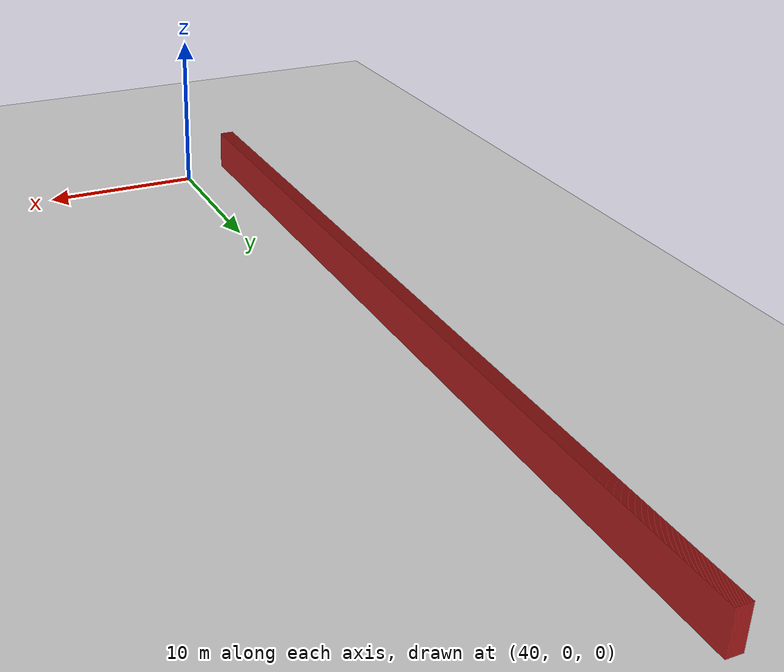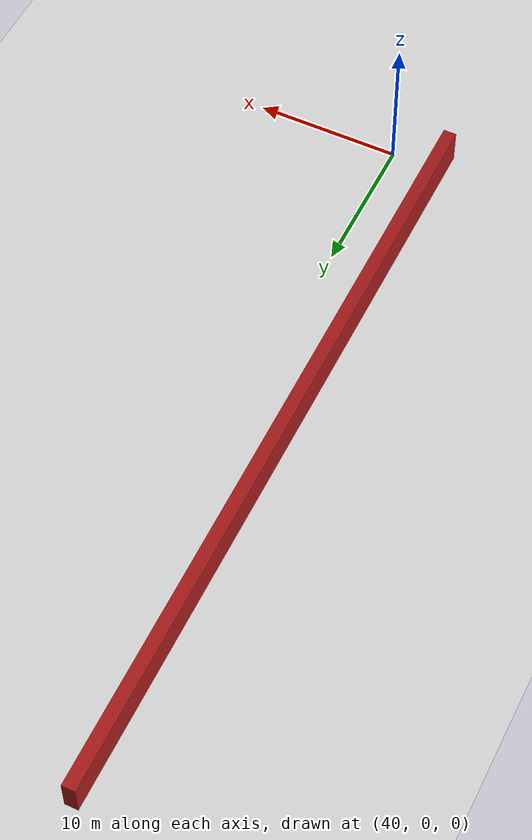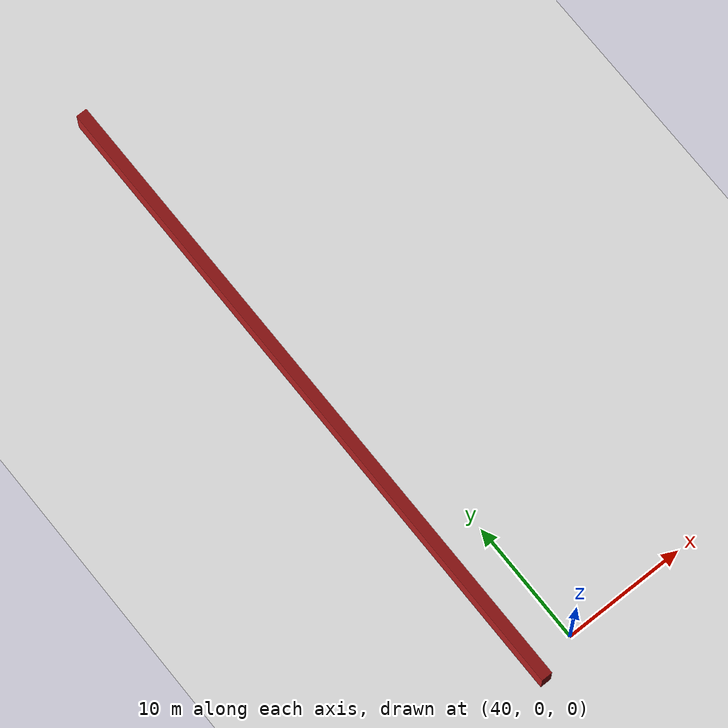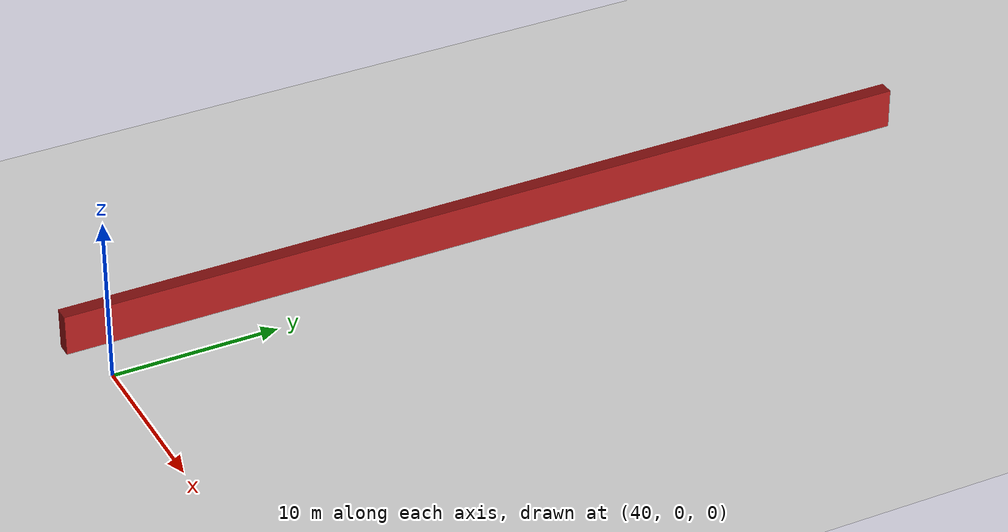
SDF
<sdf version="1.4">
 <world name="1_wall">
  <model name="ground_plane">
   <static>1</static>
   <link name="link">
    <collision name="collision">
     <geometry><plane><normal>0 0 1</normal><size>1000 1000</size></plane></geometry>
     <surface><friction><ode><mu>100</mu><mu2>50</mu2></ode></friction></surface>
    </collision>
    <visual name="visual">
     <cast_shadows>0</cast_shadows>
     <geometry><plane><normal>0 0 1</normal><size>10000 10000</size></plane></geometry>
     <material>
      <script><uri>file://media/materials/scripts/gazebo.material</uri><name>Gazebo/Grey</name></script>
     </material>
    </visual>
    <velocity_decay><linear>0</linear><angular>0</angular></velocity_decay>
   </link>
  </model>
  <model name="Wall_752">
   <static>1</static>
   <link name="Wall_752">
    <collision name="Wall_Collision_752">
     <geometry><box><size>53.65 0.05 2.5</size></box></geometry>
     <pose>0 0 1.25 0 -0 0</pose>
    </collision>
    <visual name="Wall_Visual_752">
     <pose>0 0 1.25 0 -0 0</pose>
     <geometry><box><size>53.65 0.05 2.5</size></box></geometry>
     <material>
      <script><uri>file://media/materials/scripts/gazebo.material</uri><name>Gazebo/Red</name></script>
     </material>
    </visual>
    <velocity_decay><linear>0</linear><angular>0</angular></velocity_decay>
    <pose>36.1 25.3 0 0 0 1.5707963267948966</pose>
   </link>
  </model>
  <model name="Wall_753">
   <static>1</static>
   <link name="Wall_753">
    <collision name="Wall_Collision_753">
     <geometry><box><size>53.65 0.05 2.5</size></box></geometry>
     <pose>0 0 1.25 0 -0 0</pose>
    </collision>
    <visual name="Wall_Visual_753">
     <pose>0 0 1.25 0 -0 0</pose>
     <geometry><box><size>53.65 0.05 2.5</size></box></geometry>
     <material>
      <script><uri>file://media/materials/scripts/gazebo.material</uri><name>Gazebo/Red</name></script>
     </material>
    </visual>
    <velocity_decay><linear>0</linear><angular>0</angular></velocity_decay>
    <pose>36.15 25.3 0 0 0 1.5707963267948966</pose>
   </link>
  </model>
  <model name="Wall_754">
   <static>1</static>
   <link name="Wall_754">
    <collision name="Wall_Collision_754">
     <geometry><box><size>53.65 0.05 2.5</size></box></geometry>
     <pose>0 0 1.25 0 -0 0</pose>
    </collision>
    <visual name="Wall_Visual_754">
     <pose>0 0 1.25 0 -0 0</pose>
     <geometry><box><size>53.65 0.05 2.5</size></box></geometry>
     <material>
      <script><uri>file://media/materials/scripts/gazebo.material</uri><name>Gazebo/Red</name></script>
     </material>
    </visual>
    <velocity_decay><linear>0</linear><angular>0</angular></velocity_decay>
    <pose>36.2 25.3 0 0 0 1.5707963267948966</pose>
   </link>
  </model>
  <model name="Wall_755">
   <static>1</static>
   <link name="Wall_755">
    <collision name="Wall_Collision_755">
     <geometry><box><size>53.65 0.05 2.5</size></box></geometry>
     <pose>0 0 1.25 0 -0 0</pose>
    </collision>
    <visual name="Wall_Visual_755">
     <pose>0 0 1.25 0 -0 0</pose>
     <geometry><box><size>53.65 0.05 2.5</size></box></geometry>
     <material>
      <script><uri>file://media/materials/scripts/gazebo.material</uri><name>Gazebo/Red</name></script>
     </material>
    </visual>
    <velocity_decay><linear>0</linear><angular>0</angular></velocity_decay>
    <pose>36.25 25.3 0 0 0 1.5707963267948966</pose>
   </link>
  </model>
  <model name="Wall_756">
   <static>1</static>
   <link name="Wall_756">
    <collision name="Wall_Collision_756">
     <geometry><box><size>53.65 0.05 2.5</size></box></geometry>
     <pose>0 0 1.25 0 -0 0</pose>
    </collision>
    <visual name="Wall_Visual_756">
     <pose>0 0 1.25 0 -0 0</pose>
     <geometry><box><size>53.65 0.05 2.5</size></box></geometry>
     <material>
      <script><uri>file://media/materials/scripts/gazebo.material</uri><name>Gazebo/Red</name></script>
     </material>
    </visual>
    <velocity_decay><linear>0</linear><angular>0</angular></velocity_decay>
    <pose>36.3 25.3 0 0 0 1.5707963267948966</pose>
   </link>
  </model>
  <model name="Wall_757">
   <static>1</static>
   <link name="Wall_757">
    <collision name="Wall_Collision_757">
     <geometry><box><size>53.65 0.05 2.5</size></box></geometry>
     <pose>0 0 1.25 0 -0 0</pose>
    </collision>
    <visual name="Wall_Visual_757">
     <pose>0 0 1.25 0 -0 0</pose>
     <geometry><box><size>53.65 0.05 2.5</size></box></geometry>
     <material>
      <script><uri>file://media/materials/scripts/gazebo.material</uri><name>Gazebo/Red</name></script>
     </material>
    </visual>
    <velocity_decay><linear>0</linear><angular>0</angular></velocity_decay>
    <pose>36.35 25.3 0 0 0 1.5707963267948966</pose>
   </link>
  </model>
  <model name="Wall_758">
   <static>1</static>
   <link name="Wall_758">
    <collision name="Wall_Collision_758">
     <geometry><box><size>53.65 0.05 2.5</size></box></geometry>
     <pose>0 0 1.25 0 -0 0</pose>
    </collision>
    <visual name="Wall_Visual_758">
     <pose>0 0 1.25 0 -0 0</pose>
     <geometry><box><size>53.65 0.05 2.5</size></box></geometry>
     <material>
      <script><uri>file://media/materials/scripts/gazebo.material</uri><name>Gazebo/Red</name></script>
     </material>
    </visual>
    <velocity_decay><linear>0</linear><angular>0</angular></velocity_decay>
    <pose>36.4 25.3 0 0 0 1.5707963267948966</pose>
   </link>
  </model>
  <model name="Wall_759">
   <static>1</static>
   <link name="Wall_759">
    <collision name="Wall_Collision_759">
     <geometry><box><size>53.65 0.05 2.5</size></box></geometry>
     <pose>0 0 1.25 0 -0 0</pose>
    </collision>
    <visual name="Wall_Visual_759">
     <pose>0 0 1.25 0 -0 0</pose>
     <geometry><box><size>53.65 0.05 2.5</size></box></geometry>
     <material>
      <script><uri>file://media/materials/scripts/gazebo.material</uri><name>Gazebo/Red</name></script>
     </material>
    </visual>
    <velocity_decay><linear>0</linear><angular>0</angular></velocity_decay>
    <pose>36.45 25.3 0 0 0 1.5707963267948966</pose>
   </link>
  </model>
  <model name="Wall_760">
   <static>1</static>
   <link name="Wall_760">
    <collision name="Wall_Collision_760">
     <geometry><box><size>53.65 0.05 2.5</size></box></geometry>
     <pose>0 0 1.25 0 -0 0</pose>
    </collision>
    <visual name="Wall_Visual_760">
     <pose>0 0 1.25 0 -0 0</pose>
     <geometry><box><size>53.65 0.05 2.5</size></box></geometry>
     <material>
      <script><uri>file://media/materials/scripts/gazebo.material</uri><name>Gazebo/Red</name></script>
     </material>
    </visual>
    <velocity_decay><linear>0</linear><angular>0</angular></velocity_decay>
    <pose>36.5 25.3 0 0 0 1.5707963267948966</pose>
   </link>
  </model>
  <model name="Wall_761">
   <static>1</static>
   <link name="Wall_761">
    <collision name="Wall_Collision_761">
     <geometry><box><size>53.65 0.05 2.5</size></box></geometry>
     <pose>0 0 1.25 0 -0 0</pose>
    </collision>
    <visual name="Wall_Visual_761">
     <pose>0 0 1.25 0 -0 0</pose>
     <geometry><box><size>53.65 0.05 2.5</size></box></geometry>
     <material>
      <script><uri>file://media/materials/scripts/gazebo.material</uri><name>Gazebo/Red</name></script>
     </material>
    </visual>
    <velocity_decay><linear>0</linear><angular>0</angular></velocity_decay>
    <pose>36.55 25.3 0 0 0 1.5707963267948966</pose>
   </link>
  </model>
  <model name="Wall_762">
   <static>1</static>
   <link name="Wall_762">
    <collision name="Wall_Collision_762">
     <geometry><box><size>53.65 0.05 2.5</size></box></geometry>
     <pose>0 0 1.25 0 -0 0</pose>
    </collision>
    <visual name="Wall_Visual_762">
     <pose>0 0 1.25 0 -0 0</pose>
     <geometry><box><size>53.65 0.05 2.5</size></box></geometry>
     <material>
      <script><uri>file://media/materials/scripts/gazebo.material</uri><name>Gazebo/Red</name></script>
     </material>
    </visual>
    <velocity_decay><linear>0</linear><angular>0</angular></velocity_decay>
    <pose>36.6 25.3 0 0 0 1.5707963267948966</pose>
   </link>
  </model>
  <model name="Wall_763">
   <static>1</static>
   <link name="Wall_763">
    <collision name="Wall_Collision_763">
     <geometry><box><size>53.65 0.05 2.5</size></box></geometry>
     <pose>0 0 1.25 0 -0 0</pose>
    </collision>
    <visual name="Wall_Visual_763">
     <pose>0 0 1.25 0 -0 0</pose>
     <geometry><box><size>53.65 0.05 2.5</size></box></geometry>
     <material>
      <script><uri>file://media/materials/scripts/gazebo.material</uri><name>Gazebo/Red</name></script>
     </material>
    </visual>
    <velocity_decay><linear>0</linear><angular>0</angular></velocity_decay>
    <pose>36.65 25.3 0 0 0 1.5707963267948966</pose>
   </link>
  </model>
  <model name="Wall_764">
   <static>1</static>
   <link name="Wall_764">
    <collision name="Wall_Collision_764">
     <geometry><box><size>53.65 0.05 2.5</size></box></geometry>
     <pose>0 0 1.25 0 -0 0</pose>
    </collision>
    <visual name="Wall_Visual_764">
     <pose>0 0 1.25 0 -0 0</pose>
     <geometry><box><size>53.65 0.05 2.5</size></box></geometry>
     <material>
      <script><uri>file://media/materials/scripts/gazebo.material</uri><name>Gazebo/Red</name></script>
     </material>
    </visual>
    <velocity_decay><linear>0</linear><angular>0</angular></velocity_decay>
    <pose>36.7 25.3 0 0 0 1.5707963267948966</pose>
   </link>
  </model>
  <model name="Wall_765">
   <static>1</static>
   <link name="Wall_765">
    <collision name="Wall_Collision_765">
     <geometry><box><size>53.65 0.05 2.5</size></box></geometry>
     <pose>0 0 1.25 0 -0 0</pose>
    </collision>
    <visual name="Wall_Visual_765">
     <pose>0 0 1.25 0 -0 0</pose>
     <geometry><box><size>53.65 0.05 2.5</size></box></geometry>
     <material>
      <script><uri>file://media/materials/scripts/gazebo.material</uri><name>Gazebo/Red</name></script>
     </material>
    </visual>
    <velocity_decay><linear>0</linear><angular>0</angular></velocity_decay>
    <pose>36.75 25.3 0 0 0 1.5707963267948966</pose>
   </link>
  </model>
  <model name="Wall_766">
   <static>1</static>
   <link name="Wall_766">
    <collision name="Wall_Collision_766">
     <geometry><box><size>53.65 0.05 2.5</size></box></geometry>
     <pose>0 0 1.25 0 -0 0</pose>
    </collision>
    <visual name="Wall_Visual_766">
     <pose>0 0 1.25 0 -0 0</pose>
     <geometry><box><size>53.65 0.05 2.5</size></box></geometry>
     <material>
      <script><uri>file://media/materials/scripts/gazebo.material</uri><name>Gazebo/Red</name></script>
     </material>
    </visual>
    <velocity_decay><linear>0</linear><angular>0</angular></velocity_decay>
    <pose>36.8 25.3 0 0 0 1.5707963267948966</pose>
   </link>
  </model>
  <model name="Wall_767">
   <static>1</static>
   <link name="Wall_767">
    <collision name="Wall_Collision_767">
     <geometry><box><size>53.65 0.05 2.5</size></box></geometry>
     <pose>0 0 1.25 0 -0 0</pose>
    </collision>
    <visual name="Wall_Visual_767">
     <pose>0 0 1.25 0 -0 0</pose>
     <geometry><box><size>53.65 0.05 2.5</size></box></geometry>
     <material>
      <script><uri>file://media/materials/scripts/gazebo.material</uri><name>Gazebo/Red</name></script>
     </material>
    </visual>
    <velocity_decay><linear>0</linear><angular>0</angular></velocity_decay>
    <pose>36.85 25.3 0 0 0 1.5707963267948966</pose>
   </link>
  </model>
  <model name="Wall_768">
   <static>1</static>
   <link name="Wall_768">
    <collision name="Wall_Collision_768">
     <geometry><box><size>53.65 0.05 2.5</size></box></geometry>
     <pose>0 0 1.25 0 -0 0</pose>
    </collision>
    <visual name="Wall_Visual_768">
     <pose>0 0 1.25 0 -0 0</pose>
     <geometry><box><size>53.65 0.05 2.5</size></box></geometry>
     <material>
      <script><uri>file://media/materials/scripts/gazebo.material</uri><name>Gazebo/Red</name></script>
     </material>
    </visual>
    <velocity_decay><linear>0</linear><angular>0</angular></velocity_decay>
    <pose>36.9 25.3 0 0 0 1.5707963267948966</pose>
   </link>
  </model>
  <model name="Wall_769">
   <static>1</static>
   <link name="Wall_769">
    <collision name="Wall_Collision_769">
     <geometry><box><size>53.65 0.05 2.5</size></box></geometry>
     <pose>0 0 1.25 0 -0 0</pose>
    </collision>
    <visual name="Wall_Visual_769">
     <pose>0 0 1.25 0 -0 0</pose>
     <geometry><box><size>53.65 0.05 2.5</size></box></geometry>
     <material>
      <script><uri>file://media/materials/scripts/gazebo.material</uri><name>Gazebo/Red</name></script>
     </material>
    </visual>
    <velocity_decay><linear>0</linear><angular>0</angular></velocity_decay>
    <pose>36.95 25.3 0 0 0 1.5707963267948966</pose>
   </link>
  </model>
 </world>
</sdf>
